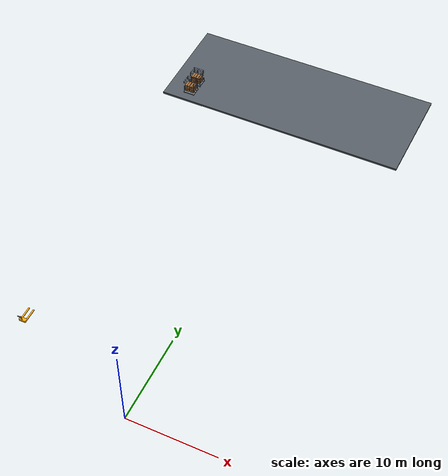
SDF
<sdf version="1.10">
 <world name="kinesis_warehouse">
  <model name="warehouse_floor_2">
   <static>true</static>
   <link name="structure">
    <visual name="slab">
     <pose>-3 48 -0.12 0 0 0</pose>
     <geometry><box><size>30 12 0.24</size></box></geometry>
     <material>
      <diffuse>0.32 0.35 0.38 1</diffuse>
      <ambient>0.224 0.245 0.266 1</ambient>
      <specular>.35 .4 .45 1</specular>
     </material>
    </visual>
    <collision name="slab_collision">
     <pose>-3 48 -0.12 0 0 0</pose>
     <geometry><box><size>30 12 0.24</size></box></geometry>
    </collision>
   </link>
  </model>
  <include><uri>model://roll_cage</uri><name>receiving_cage_0</name><pose>-15 43.5 0 0 0 0</pose></include>
  <include><uri>model://roll_cage</uri><name>receiving_cage_1</name><pose>-15 45.2 0 0 0 0</pose></include>
  <include><uri>model://pallet_jack</uri><name>pallet_jack_0</name><pose>-15 6 0 0 0 1.5708</pose></include>
 </world>
</sdf>
